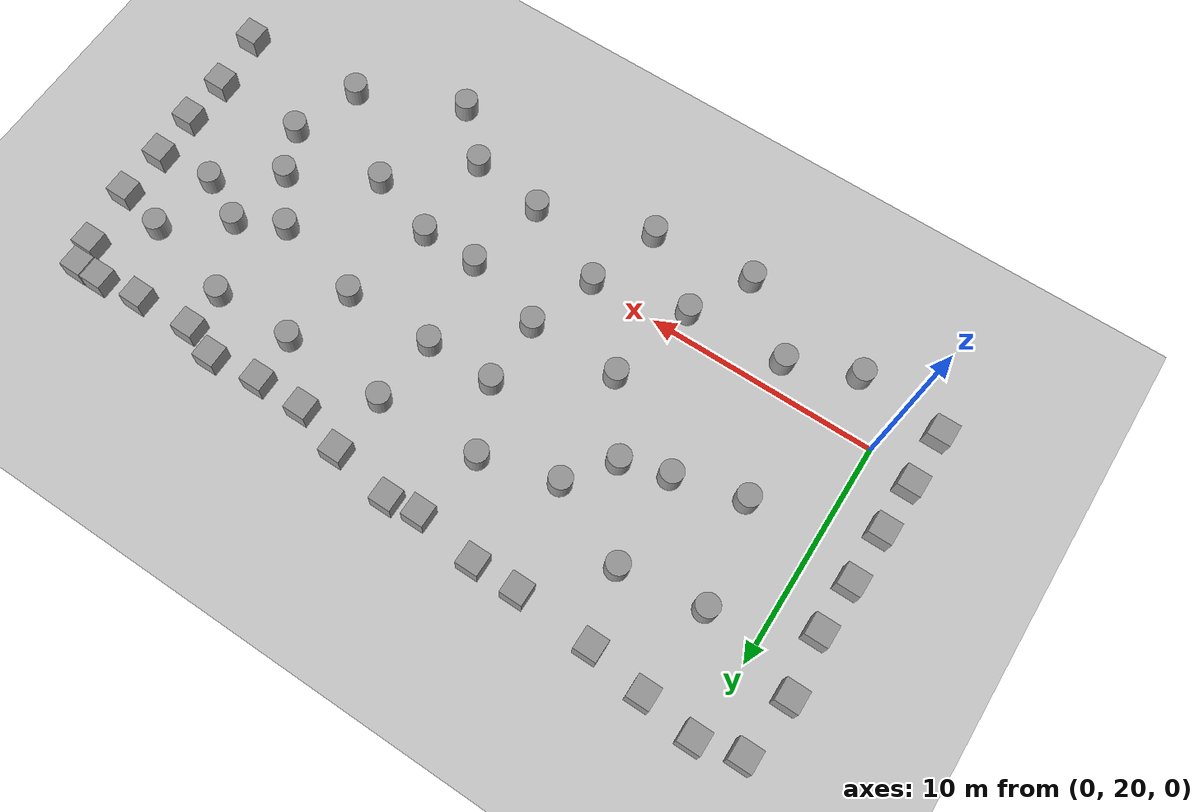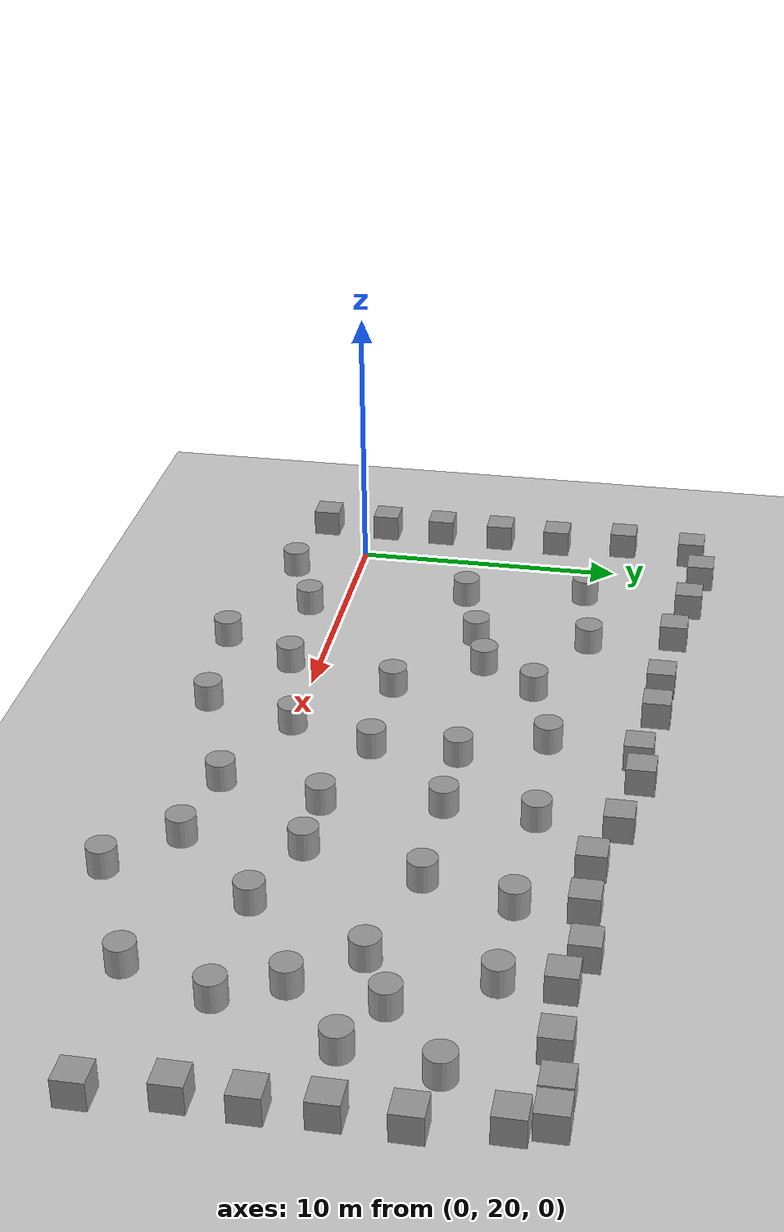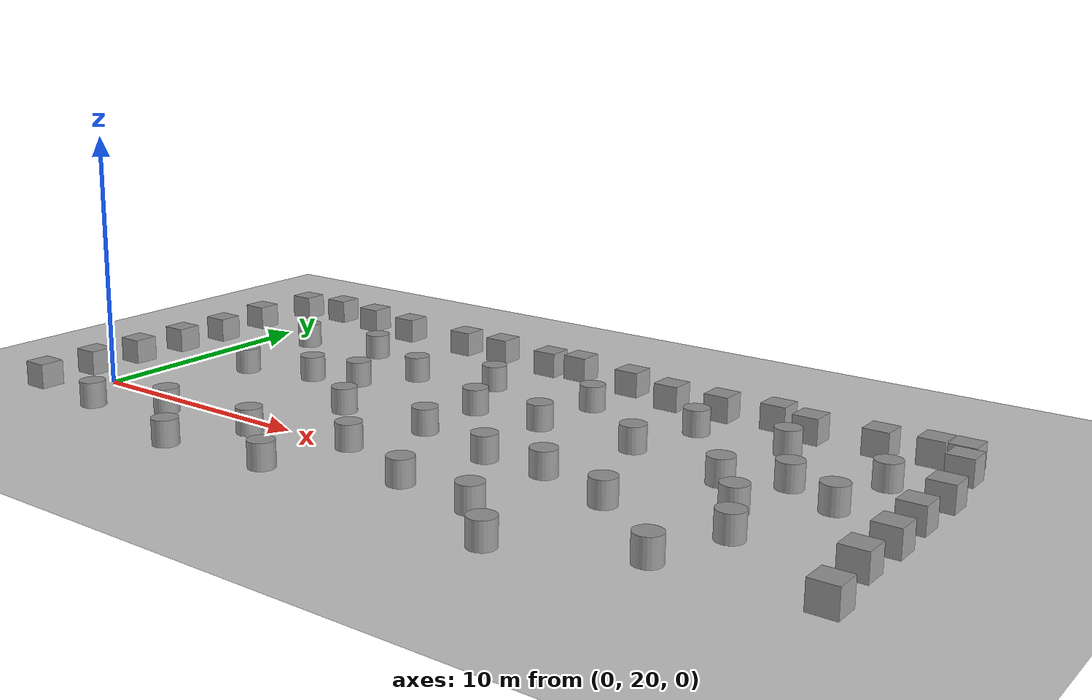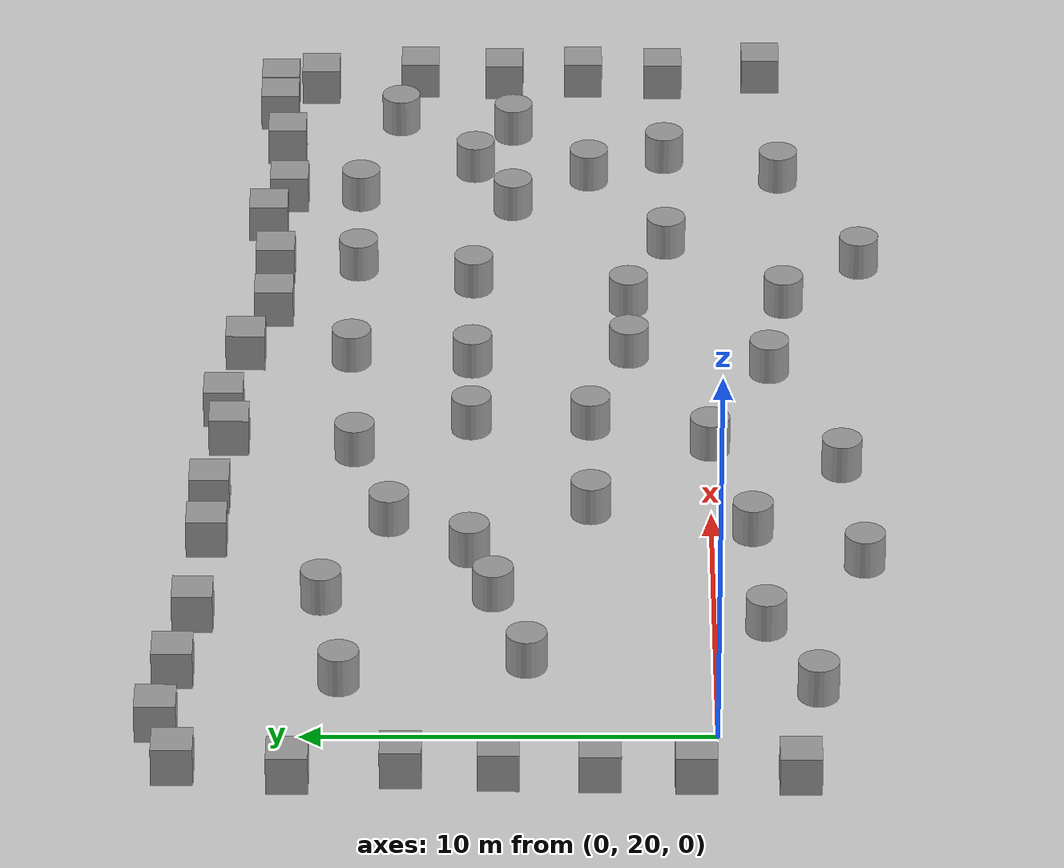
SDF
<sdf version="1.7">
 <world name="default">
  <model name="ground_plane">
   <static>1</static>
   <link name="link">
    <collision name="collision">
     <geometry><plane><normal>0 0 1</normal><size>100 100</size></plane></geometry>
     <surface><friction><ode><mu>100</mu><mu2>50</mu2></ode></friction></surface>
    </collision>
    <visual name="visual">
     <cast_shadows>0</cast_shadows>
     <geometry><plane><normal>0 0 1</normal><size>100 100</size></plane></geometry>
     <material>
      <script><uri>file://media/materials/scripts/gazebo.material</uri><name>Gazebo/Grey</name></script>
     </material>
    </visual>
   </link>
  </model>
  <model name="unit_box_0_clone_13">
   <pose>-1.93409 18.082 0.5 0 -0 0</pose>
   <link name="link">
    <inertial>
     <mass>1</mass>
     <inertia>
      <ixx>0.166667</ixx>
      <ixy>0</ixy>
      <ixz>0</ixz>
      <iyy>0.166667</iyy>
      <iyz>0</iyz>
      <izz>0.166667</izz>
     </inertia>
    </inertial>
    <collision name="collision"><geometry><box><size>1 1 1</size></box></geometry></collision>
    <visual name="visual">
     <geometry><box><size>1 1 1</size></box></geometry>
     <material>
      <script><name>Gazebo/Grey</name><uri>file://media/materials/scripts/gazebo.material</uri></script>
     </material>
    </visual>
   </link>
  </model>
  <model name="unit_box_0_clone_15">
   <pose>-1.90893 20.5485 0.5 0 -0 0</pose>
   <link name="link">
    <inertial>
     <mass>1</mass>
     <inertia>
      <ixx>0.166667</ixx>
      <ixy>0</ixy>
      <ixz>0</ixz>
      <iyy>0.166667</iyy>
      <iyz>0</iyz>
      <izz>0.166667</izz>
     </inertia>
    </inertial>
    <collision name="collision"><geometry><box><size>1 1 1</size></box></geometry></collision>
    <visual name="visual">
     <geometry><box><size>1 1 1</size></box></geometry>
     <material>
      <script><name>Gazebo/Grey</name><uri>file://media/materials/scripts/gazebo.material</uri></script>
     </material>
    </visual>
   </link>
  </model>
  <model name="unit_box_0_clone_17">
   <pose>-1.85948 22.8232 0.5 0 -0 0</pose>
   <link name="link">
    <inertial>
     <mass>1</mass>
     <inertia>
      <ixx>0.166667</ixx>
      <ixy>0</ixy>
      <ixz>0</ixz>
      <iyy>0.166667</iyy>
      <iyz>0</iyz>
      <izz>0.166667</izz>
     </inertia>
    </inertial>
    <collision name="collision"><geometry><box><size>1 1 1</size></box></geometry></collision>
    <visual name="visual">
     <geometry><box><size>1 1 1</size></box></geometry>
     <material>
      <script><name>Gazebo/Grey</name><uri>file://media/materials/scripts/gazebo.material</uri></script>
     </material>
    </visual>
   </link>
  </model>
  <model name="unit_box_0_clone_19">
   <pose>-1.81419 25.2248 0.5 0 -0 0</pose>
   <link name="link">
    <inertial>
     <mass>1</mass>
     <inertia>
      <ixx>0.166667</ixx>
      <ixy>0</ixy>
      <ixz>0</ixz>
      <iyy>0.166667</iyy>
      <iyz>0</iyz>
      <izz>0.166667</izz>
     </inertia>
    </inertial>
    <collision name="collision"><geometry><box><size>1 1 1</size></box></geometry></collision>
    <visual name="visual">
     <geometry><box><size>1 1 1</size></box></geometry>
     <material>
      <script><name>Gazebo/Grey</name><uri>file://media/materials/scripts/gazebo.material</uri></script>
     </material>
    </visual>
   </link>
  </model>
  <model name="unit_box_0_clone_21">
   <pose>-1.71241 27.5404 0.5 0 -0 0</pose>
   <link name="link">
    <inertial>
     <mass>1</mass>
     <inertia>
      <ixx>0.166667</ixx>
      <ixy>0</ixy>
      <ixz>0</ixz>
      <iyy>0.166667</iyy>
      <iyz>0</iyz>
      <izz>0.166667</izz>
     </inertia>
    </inertial>
    <collision name="collision"><geometry><box><size>1 1 1</size></box></geometry></collision>
    <visual name="visual">
     <geometry><box><size>1 1 1</size></box></geometry>
     <material>
      <script><name>Gazebo/Grey</name><uri>file://media/materials/scripts/gazebo.material</uri></script>
     </material>
    </visual>
   </link>
  </model>
  <model name="unit_box">
   <pose>19.5582 31.1273 0.5 -0 -0 -0</pose>
   <link name="link">
    <inertial>
     <mass>1</mass>
     <inertia>
      <ixx>0.166667</ixx>
      <ixy>0</ixy>
      <ixz>0</ixz>
      <iyy>0.166667</iyy>
      <iyz>0</iyz>
      <izz>0.166667</izz>
     </inertia>
    </inertial>
    <collision name="collision"><geometry><box><size>1 1 1</size></box></geometry></collision>
    <visual name="visual">
     <geometry><box><size>1 1 1</size></box></geometry>
     <material>
      <script><name>Gazebo/Grey</name><uri>file://media/materials/scripts/gazebo.material</uri></script>
     </material>
    </visual>
   </link>
  </model>
  <model name="unit_box_1">
   <pose>13.2418 32.0764 0.5 -0 -0 -0</pose>
   <link name="link">
    <inertial>
     <mass>1</mass>
     <inertia>
      <ixx>0.166667</ixx>
      <ixy>0</ixy>
      <ixz>0</ixz>
      <iyy>0.166667</iyy>
      <iyz>0</iyz>
      <izz>0.166667</izz>
     </inertia>
    </inertial>
    <collision name="collision"><geometry><box><size>1 1 1</size></box></geometry></collision>
    <visual name="visual">
     <geometry><box><size>1 1 1</size></box></geometry>
     <material>
      <script><name>Gazebo/Grey</name><uri>file://media/materials/scripts/gazebo.material</uri></script>
     </material>
    </visual>
   </link>
  </model>
  <model name="unit_box_2">
   <pose>8.46351 32.48 0.5 -0 -0 -0</pose>
   <link name="link">
    <inertial>
     <mass>1</mass>
     <inertia>
      <ixx>0.166667</ixx>
      <ixy>0</ixy>
      <ixz>0</ixz>
      <iyy>0.166667</iyy>
      <iyz>0</iyz>
      <izz>0.166667</izz>
     </inertia>
    </inertial>
    <collision name="collision"><geometry><box><size>1 1 1</size></box></geometry></collision>
    <visual name="visual">
     <geometry><box><size>1 1 1</size></box></geometry>
     <material>
      <script><name>Gazebo/Grey</name><uri>file://media/materials/scripts/gazebo.material</uri></script>
     </material>
    </visual>
   </link>
  </model>
  <model name="unit_box_3">
   <pose>10.4591 32.4738 0.5 -0 -0 -0</pose>
   <link name="link">
    <inertial>
     <mass>1</mass>
     <inertia>
      <ixx>0.166667</ixx>
      <ixy>0</ixy>
      <ixz>0</ixz>
      <iyy>0.166667</iyy>
      <iyz>0</iyz>
      <izz>0.166667</izz>
     </inertia>
    </inertial>
    <collision name="collision"><geometry><box><size>1 1 1</size></box></geometry></collision>
    <visual name="visual">
     <geometry><box><size>1 1 1</size></box></geometry>
     <material>
      <script><name>Gazebo/Grey</name><uri>file://media/materials/scripts/gazebo.material</uri></script>
     </material>
    </visual>
   </link>
  </model>
  <model name="unit_box_4">
   <pose>5.07451 32.7008 0.5 -0 -0 -0</pose>
   <link name="link">
    <inertial>
     <mass>1</mass>
     <inertia>
      <ixx>0.166667</ixx>
      <ixy>0</ixy>
      <ixz>0</ixz>
      <iyy>0.166667</iyy>
      <iyz>0</iyz>
      <izz>0.166667</izz>
     </inertia>
    </inertial>
    <collision name="collision"><geometry><box><size>1 1 1</size></box></geometry></collision>
    <visual name="visual">
     <geometry><box><size>1 1 1</size></box></geometry>
     <material>
      <script><name>Gazebo/Grey</name><uri>file://media/materials/scripts/gazebo.material</uri></script>
     </material>
    </visual>
   </link>
  </model>
  <model name="unit_box_5">
   <pose>2.57079 33.0945 0.5 -0 -0 -0</pose>
   <link name="link">
    <inertial>
     <mass>1</mass>
     <inertia>
      <ixx>0.166667</ixx>
      <ixy>0</ixy>
      <ixz>0</ixz>
      <iyy>0.166667</iyy>
      <iyz>0</iyz>
      <izz>0.166667</izz>
     </inertia>
    </inertial>
    <collision name="collision"><geometry><box><size>1 1 1</size></box></geometry></collision>
    <visual name="visual">
     <geometry><box><size>1 1 1</size></box></geometry>
     <material>
      <script><name>Gazebo/Grey</name><uri>file://media/materials/scripts/gazebo.material</uri></script>
     </material>
    </visual>
   </link>
  </model>
  <model name="unit_box_6">
   <pose>0.246513 33.4093 0.5 -0 -0 -0</pose>
   <link name="link">
    <inertial>
     <mass>1</mass>
     <inertia>
      <ixx>0.166667</ixx>
      <ixy>0</ixy>
      <ixz>0</ixz>
      <iyy>0.166667</iyy>
      <iyz>0</iyz>
      <izz>0.166667</izz>
     </inertia>
    </inertial>
    <collision name="collision"><geometry><box><size>1 1 1</size></box></geometry></collision>
    <visual name="visual">
     <geometry><box><size>1 1 1</size></box></geometry>
     <material>
      <script><name>Gazebo/Grey</name><uri>file://media/materials/scripts/gazebo.material</uri></script>
     </material>
    </visual>
   </link>
  </model>
  <model name="unit_box_7">
   <pose>-1.58382 32.9418 0.5 -0 -0 -0</pose>
   <link name="link">
    <inertial>
     <mass>1</mass>
     <inertia>
      <ixx>0.166667</ixx>
      <ixy>0</ixy>
      <ixz>0</ixz>
      <iyy>0.166667</iyy>
      <iyz>0</iyz>
      <izz>0.166667</izz>
     </inertia>
    </inertial>
    <collision name="collision"><geometry><box><size>1 1 1</size></box></geometry></collision>
    <visual name="visual">
     <geometry><box><size>1 1 1</size></box></geometry>
     <material>
      <script><name>Gazebo/Grey</name><uri>file://media/materials/scripts/gazebo.material</uri></script>
     </material>
    </visual>
   </link>
  </model>
  <model name="unit_box_8">
   <pose>-1.95351 30.2154 0.5 -0 -0 -0</pose>
   <link name="link">
    <inertial>
     <mass>1</mass>
     <inertia>
      <ixx>0.166667</ixx>
      <ixy>0</ixy>
      <ixz>0</ixz>
      <iyy>0.166667</iyy>
      <iyz>0</iyz>
      <izz>0.166667</izz>
     </inertia>
    </inertial>
    <collision name="collision"><geometry><box><size>1 1 1</size></box></geometry></collision>
    <visual name="visual">
     <geometry><box><size>1 1 1</size></box></geometry>
     <material>
      <script><name>Gazebo/Grey</name><uri>file://media/materials/scripts/gazebo.material</uri></script>
     </material>
    </visual>
   </link>
  </model>
  <model name="unit_box_9">
   <pose>25.4229 30.8816 0.5 -0 -0 -0</pose>
   <link name="link">
    <inertial>
     <mass>1</mass>
     <inertia>
      <ixx>0.166667</ixx>
      <ixy>0</ixy>
      <ixz>0</ixz>
      <iyy>0.166667</iyy>
      <iyz>0</iyz>
      <izz>0.166667</izz>
     </inertia>
    </inertial>
    <collision name="collision"><geometry><box><size>1 1 1</size></box></geometry></collision>
    <visual name="visual">
     <geometry><box><size>1 1 1</size></box></geometry>
     <material>
      <script><name>Gazebo/Grey</name><uri>file://media/materials/scripts/gazebo.material</uri></script>
     </material>
    </visual>
   </link>
  </model>
  <model name="unit_box_16_clone_2">
   <pose>31.8597 18.3744 0.5 0 -0 0</pose>
   <link name="link">
    <inertial>
     <mass>1</mass>
     <inertia>
      <ixx>0.166667</ixx>
      <ixy>0</ixy>
      <ixz>0</ixz>
      <iyy>0.166667</iyy>
      <iyz>0</iyz>
      <izz>0.166667</izz>
     </inertia>
    </inertial>
    <collision name="collision"><geometry><box><size>1 1 1</size></box></geometry></collision>
    <visual name="visual">
     <geometry><box><size>1 1 1</size></box></geometry>
     <material>
      <script><name>Gazebo/Grey</name><uri>file://media/materials/scripts/gazebo.material</uri></script>
     </material>
    </visual>
   </link>
  </model>
  <model name="unit_box_16_clone_3">
   <pose>31.5558 21 0.5 0 -0 0</pose>
   <link name="link">
    <inertial>
     <mass>1</mass>
     <inertia>
      <ixx>0.166667</ixx>
      <ixy>0</ixy>
      <ixz>0</ixz>
      <iyy>0.166667</iyy>
      <iyz>0</iyz>
      <izz>0.166667</izz>
     </inertia>
    </inertial>
    <collision name="collision"><geometry><box><size>1 1 1</size></box></geometry></collision>
    <visual name="visual">
     <geometry><box><size>1 1 1</size></box></geometry>
     <material>
      <script><name>Gazebo/Grey</name><uri>file://media/materials/scripts/gazebo.material</uri></script>
     </material>
    </visual>
   </link>
  </model>
  <model name="unit_box_16_clone_4">
   <pose>31.6287 23.1382 0.5 -0 -0 -0</pose>
   <link name="link">
    <inertial>
     <mass>1</mass>
     <inertia>
      <ixx>0.166667</ixx>
      <ixy>0</ixy>
      <ixz>0</ixz>
      <iyy>0.166667</iyy>
      <iyz>0</iyz>
      <izz>0.166667</izz>
     </inertia>
    </inertial>
    <collision name="collision"><geometry><box><size>1 1 1</size></box></geometry></collision>
    <visual name="visual">
     <geometry><box><size>1 1 1</size></box></geometry>
     <material>
      <script><name>Gazebo/Grey</name><uri>file://media/materials/scripts/gazebo.material</uri></script>
     </material>
    </visual>
   </link>
  </model>
  <model name="unit_box_16_clone_5">
   <pose>31.5315 25.2557 0.5 0 -0 0</pose>
   <link name="link">
    <inertial>
     <mass>1</mass>
     <inertia>
      <ixx>0.166667</ixx>
      <ixy>0</ixy>
      <ixz>0</ixz>
      <iyy>0.166667</iyy>
      <iyz>0</iyz>
      <izz>0.166667</izz>
     </inertia>
    </inertial>
    <collision name="collision"><geometry><box><size>1 1 1</size></box></geometry></collision>
    <visual name="visual">
     <geometry><box><size>1 1 1</size></box></geometry>
     <material>
      <script><name>Gazebo/Grey</name><uri>file://media/materials/scripts/gazebo.material</uri></script>
     </material>
    </visual>
   </link>
  </model>
  <model name="unit_box_16_clone_6">
   <pose>31.5969 27.5166 0.5 0 -0 0</pose>
   <link name="link">
    <inertial>
     <mass>1</mass>
     <inertia>
      <ixx>0.166667</ixx>
      <ixy>0</ixy>
      <ixz>0</ixz>
      <iyy>0.166667</iyy>
      <iyz>0</iyz>
      <izz>0.166667</izz>
     </inertia>
    </inertial>
    <collision name="collision"><geometry><box><size>1 1 1</size></box></geometry></collision>
    <visual name="visual">
     <geometry><box><size>1 1 1</size></box></geometry>
     <material>
      <script><name>Gazebo/Grey</name><uri>file://media/materials/scripts/gazebo.material</uri></script>
     </material>
    </visual>
   </link>
  </model>
  <model name="unit_box_16_clone_7">
   <pose>31.2341 30.1775 0.5 0 -0 0</pose>
   <link name="link">
    <inertial>
     <mass>1</mass>
     <inertia>
      <ixx>0.166667</ixx>
      <ixy>0</ixy>
      <ixz>0</ixz>
      <iyy>0.166667</iyy>
      <iyz>0</iyz>
      <izz>0.166667</izz>
     </inertia>
    </inertial>
    <collision name="collision"><geometry><box><size>1 1 1</size></box></geometry></collision>
    <visual name="visual">
     <geometry><box><size>1 1 1</size></box></geometry>
     <material>
      <script><name>Gazebo/Grey</name><uri>file://media/materials/scripts/gazebo.material</uri></script>
     </material>
    </visual>
   </link>
  </model>
  <model name="unit_box_16_clone_8">
   <pose>30.922 31.2536 0.5 -0 -0 -0</pose>
   <link name="link">
    <inertial>
     <mass>1</mass>
     <inertia>
      <ixx>0.166667</ixx>
      <ixy>0</ixy>
      <ixz>0</ixz>
      <iyy>0.166667</iyy>
      <iyz>0</iyz>
      <izz>0.166667</izz>
     </inertia>
    </inertial>
    <collision name="collision"><geometry><box><size>1 1 1</size></box></geometry></collision>
    <visual name="visual">
     <geometry><box><size>1 1 1</size></box></geometry>
     <material>
      <script><name>Gazebo/Grey</name><uri>file://media/materials/scripts/gazebo.material</uri></script>
     </material>
    </visual>
   </link>
  </model>
  <model name="unit_box_16_clone_9">
   <pose>29.8641 31.2435 0.5 0 -0 0</pose>
   <link name="link">
    <inertial>
     <mass>1</mass>
     <inertia>
      <ixx>0.166667</ixx>
      <ixy>0</ixy>
      <ixz>0</ixz>
      <iyy>0.166667</iyy>
      <iyz>0</iyz>
      <izz>0.166667</izz>
     </inertia>
    </inertial>
    <collision name="collision"><geometry><box><size>1 1 1</size></box></geometry></collision>
    <visual name="visual">
     <geometry><box><size>1 1 1</size></box></geometry>
     <material>
      <script><name>Gazebo/Grey</name><uri>file://media/materials/scripts/gazebo.material</uri></script>
     </material>
    </visual>
   </link>
  </model>
  <model name="unit_box_16_clone_10">
   <pose>28 31 0.5 -0 -0 -0</pose>
   <link name="link">
    <inertial>
     <mass>1</mass>
     <inertia>
      <ixx>0.166667</ixx>
      <ixy>0</ixy>
      <ixz>0</ixz>
      <iyy>0.166667</iyy>
      <iyz>0</iyz>
      <izz>0.166667</izz>
     </inertia>
    </inertial>
    <collision name="collision"><geometry><box><size>1 1 1</size></box></geometry></collision>
    <visual name="visual">
     <geometry><box><size>1 1 1</size></box></geometry>
     <material>
      <script><name>Gazebo/Grey</name><uri>file://media/materials/scripts/gazebo.material</uri></script>
     </material>
    </visual>
   </link>
  </model>
  <model name="unit_box_16_clone_11">
   <pose>23.9181 31.3844 0.5 -0 -0 -0</pose>
   <link name="link">
    <inertial>
     <mass>1</mass>
     <inertia>
      <ixx>0.166667</ixx>
      <ixy>0</ixy>
      <ixz>0</ixz>
      <iyy>0.166667</iyy>
      <iyz>0</iyz>
      <izz>0.166667</izz>
     </inertia>
    </inertial>
    <collision name="collision"><geometry><box><size>1 1 1</size></box></geometry></collision>
    <visual name="visual">
     <geometry><box><size>1 1 1</size></box></geometry>
     <material>
      <script><name>Gazebo/Grey</name><uri>file://media/materials/scripts/gazebo.material</uri></script>
     </material>
    </visual>
   </link>
  </model>
  <model name="unit_box_16_clone_12">
   <pose>21.7173 31.1442 0.5 -0 -0 -0</pose>
   <link name="link">
    <inertial>
     <mass>1</mass>
     <inertia>
      <ixx>0.166667</ixx>
      <ixy>0</ixy>
      <ixz>0</ixz>
      <iyy>0.166667</iyy>
      <iyz>0</iyz>
      <izz>0.166667</izz>
     </inertia>
    </inertial>
    <collision name="collision"><geometry><box><size>1 1 1</size></box></geometry></collision>
    <visual name="visual">
     <geometry><box><size>1 1 1</size></box></geometry>
     <material>
      <script><name>Gazebo/Grey</name><uri>file://media/materials/scripts/gazebo.material</uri></script>
     </material>
    </visual>
   </link>
  </model>
  <model name="unit_box_16_clone_13">
   <pose>17.3804 31.7887 0.5 -0 -0 -0</pose>
   <link name="link">
    <inertial>
     <mass>1</mass>
     <inertia>
      <ixx>0.166667</ixx>
      <ixy>0</ixy>
      <ixz>0</ixz>
      <iyy>0.166667</iyy>
      <iyz>0</iyz>
      <izz>0.166667</izz>
     </inertia>
    </inertial>
    <collision name="collision"><geometry><box><size>1 1 1</size></box></geometry></collision>
    <visual name="visual">
     <geometry><box><size>1 1 1</size></box></geometry>
     <material>
      <script><name>Gazebo/Grey</name><uri>file://media/materials/scripts/gazebo.material</uri></script>
     </material>
    </visual>
   </link>
  </model>
  <model name="unit_box_16_clone_14">
   <pose>14.6222 32.2609 0.5 0 -0 0</pose>
   <link name="link">
    <inertial>
     <mass>1</mass>
     <inertia>
      <ixx>0.166667</ixx>
      <ixy>0</ixy>
      <ixz>0</ixz>
      <iyy>0.166667</iyy>
      <iyz>0</iyz>
      <izz>0.166667</izz>
     </inertia>
    </inertial>
    <collision name="collision"><geometry><box><size>1 1 1</size></box></geometry></collision>
    <visual name="visual">
     <geometry><box><size>1 1 1</size></box></geometry>
     <material>
      <script><name>Gazebo/Grey</name><uri>file://media/materials/scripts/gazebo.material</uri></script>
     </material>
    </visual>
   </link>
  </model>
  <model name="unit_cylinder_clone_15">
   <pose>26.4625 18 0.499998 3e-06 -4e-06 0</pose>
   <link name="link">
    <inertial>
     <mass>1</mass>
     <inertia><ixx>0.145833</ixx><ixy>0</ixy><ixz>0</ixz><iyy>0.145833</iyy><iyz>0</iyz><izz>0.125</izz></inertia>
    </inertial>
    <collision name="collision">
     <geometry><cylinder><radius>0.5</radius><length>1</length></cylinder></geometry>
    </collision>
    <visual name="visual">
     <geometry><cylinder><radius>0.5</radius><length>1</length></cylinder></geometry>
     <material>
      <script><name>Gazebo/Grey</name><uri>file://media/materials/scripts/gazebo.material</uri></script>
     </material>
    </visual>
   </link>
  </model>
  <model name="unit_cylinder_clone_24">
   <pose>27.4927 21 0.499992 -3e-06 4e-06 0</pose>
   <link name="link">
    <inertial>
     <mass>1</mass>
     <inertia><ixx>0.145833</ixx><ixy>0</ixy><ixz>0</ixz><iyy>0.145833</iyy><iyz>0</iyz><izz>0.125</izz></inertia>
    </inertial>
    <collision name="collision">
     <geometry><cylinder><radius>0.5</radius><length>1</length></cylinder></geometry>
    </collision>
    <visual name="visual">
     <geometry><cylinder><radius>0.5</radius><length>1</length></cylinder></geometry>
     <material>
      <script><name>Gazebo/Grey</name><uri>file://media/materials/scripts/gazebo.material</uri></script>
     </material>
    </visual>
   </link>
  </model>
  <model name="unit_cylinder_clone_25">
   <pose>29 25 0.499998 3e-06 -4e-06 0</pose>
   <link name="link">
    <inertial>
     <mass>1</mass>
     <inertia><ixx>0.145833</ixx><ixy>0</ixy><ixz>0</ixz><iyy>0.145833</iyy><iyz>0</iyz><izz>0.125</izz></inertia>
    </inertial>
    <collision name="collision">
     <geometry><cylinder><radius>0.5</radius><length>1</length></cylinder></geometry>
    </collision>
    <visual name="visual">
     <geometry><cylinder><radius>0.5</radius><length>1</length></cylinder></geometry>
     <material>
      <script><name>Gazebo/Grey</name><uri>file://media/materials/scripts/gazebo.material</uri></script>
     </material>
    </visual>
   </link>
  </model>
  <model name="unit_cylinder_clone_26">
   <pose>29.5016 28 0.499992 -3e-06 4e-06 0</pose>
   <link name="link">
    <inertial>
     <mass>1</mass>
     <inertia><ixx>0.145833</ixx><ixy>0</ixy><ixz>0</ixz><iyy>0.145833</iyy><iyz>0</iyz><izz>0.125</izz></inertia>
    </inertial>
    <collision name="collision">
     <geometry><cylinder><radius>0.5</radius><length>1</length></cylinder></geometry>
    </collision>
    <visual name="visual">
     <geometry><cylinder><radius>0.5</radius><length>1</length></cylinder></geometry>
     <material>
      <script><name>Gazebo/Grey</name><uri>file://media/materials/scripts/gazebo.material</uri></script>
     </material>
    </visual>
   </link>
  </model>
  <model name="unit_cylinder_clone_27">
   <pose>25.4619 29 0.499998 3e-06 -4e-06 0</pose>
   <link name="link">
    <inertial>
     <mass>1</mass>
     <inertia><ixx>0.145833</ixx><ixy>0</ixy><ixz>0</ixz><iyy>0.145833</iyy><iyz>0</iyz><izz>0.125</izz></inertia>
    </inertial>
    <collision name="collision">
     <geometry><cylinder><radius>0.5</radius><length>1</length></cylinder></geometry>
    </collision>
    <visual name="visual">
     <geometry><cylinder><radius>0.5</radius><length>1</length></cylinder></geometry>
     <material>
      <script><name>Gazebo/Grey</name><uri>file://media/materials/scripts/gazebo.material</uri></script>
     </material>
    </visual>
   </link>
  </model>
  <model name="unit_cylinder_clone_28">
   <pose>25 25 0.499992 -3e-06 4e-06 0</pose>
   <link name="link">
    <inertial>
     <mass>1</mass>
     <inertia><ixx>0.145833</ixx><ixy>0</ixy><ixz>0</ixz><iyy>0.145833</iyy><iyz>0</iyz><izz>0.125</izz></inertia>
    </inertial>
    <collision name="collision">
     <geometry><cylinder><radius>0.5</radius><length>1</length></cylinder></geometry>
    </collision>
    <visual name="visual">
     <geometry><cylinder><radius>0.5</radius><length>1</length></cylinder></geometry>
     <material>
      <script><name>Gazebo/Grey</name><uri>file://media/materials/scripts/gazebo.material</uri></script>
     </material>
    </visual>
   </link>
  </model>
  <model name="unit_cylinder_clone_29">
   <pose>26.5562 23 0.499998 4e-06 -4e-06 0</pose>
   <link name="link">
    <inertial>
     <mass>1</mass>
     <inertia><ixx>0.145833</ixx><ixy>0</ixy><ixz>0</ixz><iyy>0.145833</iyy><iyz>0</iyz><izz>0.125</izz></inertia>
    </inertial>
    <collision name="collision">
     <geometry><cylinder><radius>0.5</radius><length>1</length></cylinder></geometry>
    </collision>
    <visual name="visual">
     <geometry><cylinder><radius>0.5</radius><length>1</length></cylinder></geometry>
     <material>
      <script><name>Gazebo/Grey</name><uri>file://media/materials/scripts/gazebo.material</uri></script>
     </material>
    </visual>
   </link>
  </model>
  <model name="unit_cylinder_clone_30">
   <pose>27 26 0.499998 4e-06 -4e-06 0</pose>
   <link name="link">
    <inertial>
     <mass>1</mass>
     <inertia><ixx>0.145833</ixx><ixy>0</ixy><ixz>0</ixz><iyy>0.145833</iyy><iyz>0</iyz><izz>0.125</izz></inertia>
    </inertial>
    <collision name="collision">
     <geometry><cylinder><radius>0.5</radius><length>1</length></cylinder></geometry>
    </collision>
    <visual name="visual">
     <geometry><cylinder><radius>0.5</radius><length>1</length></cylinder></geometry>
     <material>
      <script><name>Gazebo/Grey</name><uri>file://media/materials/scripts/gazebo.material</uri></script>
     </material>
    </visual>
   </link>
  </model>
  <model name="unit_cylinder_clone_31">
   <pose>23 21 0.499992 -3e-06 -4e-06 -0</pose>
   <link name="link">
    <inertial>
     <mass>1</mass>
     <inertia><ixx>0.145833</ixx><ixy>0</ixy><ixz>0</ixz><iyy>0.145833</iyy><iyz>0</iyz><izz>0.125</izz></inertia>
    </inertial>
    <collision name="collision">
     <geometry><cylinder><radius>0.5</radius><length>1</length></cylinder></geometry>
    </collision>
    <visual name="visual">
     <geometry><cylinder><radius>0.5</radius><length>1</length></cylinder></geometry>
     <material>
      <script><name>Gazebo/Grey</name><uri>file://media/materials/scripts/gazebo.material</uri></script>
     </material>
    </visual>
   </link>
  </model>
  <model name="unit_cylinder_clone_32">
   <pose>21 26 0.499998 3e-06 4e-06 -0</pose>
   <link name="link">
    <inertial>
     <mass>1</mass>
     <inertia><ixx>0.145833</ixx><ixy>0</ixy><ixz>0</ixz><iyy>0.145833</iyy><iyz>0</iyz><izz>0.125</izz></inertia>
    </inertial>
    <collision name="collision">
     <geometry><cylinder><radius>0.5</radius><length>1</length></cylinder></geometry>
    </collision>
    <visual name="visual">
     <geometry><cylinder><radius>0.5</radius><length>1</length></cylinder></geometry>
     <material>
      <script><name>Gazebo/Grey</name><uri>file://media/materials/scripts/gazebo.material</uri></script>
     </material>
    </visual>
   </link>
  </model>
  <model name="unit_cylinder_clone_33">
   <pose>17 26 0.499992 -3e-06 -4e-06 -0</pose>
   <link name="link">
    <inertial>
     <mass>1</mass>
     <inertia><ixx>0.145833</ixx><ixy>0</ixy><ixz>0</ixz><iyy>0.145833</iyy><iyz>0</iyz><izz>0.125</izz></inertia>
    </inertial>
    <collision name="collision">
     <geometry><cylinder><radius>0.5</radius><length>1</length></cylinder></geometry>
    </collision>
    <visual name="visual">
     <geometry><cylinder><radius>0.5</radius><length>1</length></cylinder></geometry>
     <material>
      <script><name>Gazebo/Grey</name><uri>file://media/materials/scripts/gazebo.material</uri></script>
     </material>
    </visual>
   </link>
  </model>
  <model name="unit_cylinder_clone_34">
   <pose>17.5007 22 0.499998 3e-06 4e-06 -0</pose>
   <link name="link">
    <inertial>
     <mass>1</mass>
     <inertia><ixx>0.145833</ixx><ixy>0</ixy><ixz>0</ixz><iyy>0.145833</iyy><iyz>0</iyz><izz>0.125</izz></inertia>
    </inertial>
    <collision name="collision">
     <geometry><cylinder><radius>0.5</radius><length>1</length></cylinder></geometry>
    </collision>
    <visual name="visual">
     <geometry><cylinder><radius>0.5</radius><length>1</length></cylinder></geometry>
     <material>
      <script><name>Gazebo/Grey</name><uri>file://media/materials/scripts/gazebo.material</uri></script>
     </material>
    </visual>
   </link>
  </model>
  <model name="unit_cylinder_clone_35">
   <pose>20 22 0.499992 -3e-06 -4e-06 -0</pose>
   <link name="link">
    <inertial>
     <mass>1</mass>
     <inertia><ixx>0.145833</ixx><ixy>0</ixy><ixz>0</ixz><iyy>0.145833</iyy><iyz>0</iyz><izz>0.125</izz></inertia>
    </inertial>
    <collision name="collision">
     <geometry><cylinder><radius>0.5</radius><length>1</length></cylinder></geometry>
    </collision>
    <visual name="visual">
     <geometry><cylinder><radius>0.5</radius><length>1</length></cylinder></geometry>
     <material>
      <script><name>Gazebo/Grey</name><uri>file://media/materials/scripts/gazebo.material</uri></script>
     </material>
    </visual>
   </link>
  </model>
  <model name="unit_cylinder_clone_36">
   <pose>20 18 0.499992 -3e-06 -4e-06 -0</pose>
   <link name="link">
    <inertial>
     <mass>1</mass>
     <inertia><ixx>0.145833</ixx><ixy>0</ixy><ixz>0</ixz><iyy>0.145833</iyy><iyz>0</iyz><izz>0.125</izz></inertia>
    </inertial>
    <collision name="collision">
     <geometry><cylinder><radius>0.5</radius><length>1</length></cylinder></geometry>
    </collision>
    <visual name="visual">
     <geometry><cylinder><radius>0.5</radius><length>1</length></cylinder></geometry>
     <material>
      <script><name>Gazebo/Grey</name><uri>file://media/materials/scripts/gazebo.material</uri></script>
     </material>
    </visual>
   </link>
  </model>
  <model name="unit_cylinder_clone_37">
   <pose>22 16 0.499992 -3e-06 -4e-06 -0</pose>
   <link name="link">
    <inertial>
     <mass>1</mass>
     <inertia><ixx>0.145833</ixx><ixy>0</ixy><ixz>0</ixz><iyy>0.145833</iyy><iyz>0</iyz><izz>0.125</izz></inertia>
    </inertial>
    <collision name="collision">
     <geometry><cylinder><radius>0.5</radius><length>1</length></cylinder></geometry>
    </collision>
    <visual name="visual">
     <geometry><cylinder><radius>0.5</radius><length>1</length></cylinder></geometry>
     <material>
      <script><name>Gazebo/Grey</name><uri>file://media/materials/scripts/gazebo.material</uri></script>
     </material>
    </visual>
   </link>
  </model>
  <model name="unit_cylinder_clone_38">
   <pose>16.7538 18.4349 0.499998 3e-06 4e-06 -0</pose>
   <link name="link">
    <inertial>
     <mass>1</mass>
     <inertia><ixx>0.145833</ixx><ixy>0</ixy><ixz>0</ixz><iyy>0.145833</iyy><iyz>0</iyz><izz>0.125</izz></inertia>
    </inertial>
    <collision name="collision">
     <geometry><cylinder><radius>0.5</radius><length>1</length></cylinder></geometry>
    </collision>
    <visual name="visual">
     <geometry><cylinder><radius>0.5</radius><length>1</length></cylinder></geometry>
     <material>
      <script><name>Gazebo/Grey</name><uri>file://media/materials/scripts/gazebo.material</uri></script>
     </material>
    </visual>
   </link>
  </model>
  <model name="unit_cylinder_clone_39">
   <pose>13 20 0.499998 3e-06 4e-06 -0</pose>
   <link name="link">
    <inertial>
     <mass>1</mass>
     <inertia><ixx>0.145833</ixx><ixy>0</ixy><ixz>0</ixz><iyy>0.145833</iyy><iyz>0</iyz><izz>0.125</izz></inertia>
    </inertial>
    <collision name="collision">
     <geometry><cylinder><radius>0.5</radius><length>1</length></cylinder></geometry>
    </collision>
    <visual name="visual">
     <geometry><cylinder><radius>0.5</radius><length>1</length></cylinder></geometry>
     <material>
      <script><name>Gazebo/Grey</name><uri>file://media/materials/scripts/gazebo.material</uri></script>
     </material>
    </visual>
   </link>
  </model>
  <model name="unit_cylinder_clone_40">
   <pose>11.9934 16.7199 0.499997 3e-06 3e-06 0</pose>
   <link name="link">
    <inertial>
     <mass>1</mass>
     <inertia><ixx>0.145833</ixx><ixy>0</ixy><ixz>0</ixz><iyy>0.145833</iyy><iyz>0</iyz><izz>0.125</izz></inertia>
    </inertial>
    <collision name="collision">
     <geometry><cylinder><radius>0.5</radius><length>1</length></cylinder></geometry>
    </collision>
    <visual name="visual">
     <geometry><cylinder><radius>0.5</radius><length>1</length></cylinder></geometry>
     <material>
      <script><name>Gazebo/Grey</name><uri>file://media/materials/scripts/gazebo.material</uri></script>
     </material>
    </visual>
   </link>
  </model>
  <model name="unit_cylinder_clone_41">
   <pose>7.56689 16.277 0.499993 -3e-06 -3e-06 0</pose>
   <link name="link">
    <inertial>
     <mass>1</mass>
     <inertia><ixx>0.145833</ixx><ixy>0</ixy><ixz>0</ixz><iyy>0.145833</iyy><iyz>0</iyz><izz>0.125</izz></inertia>
    </inertial>
    <collision name="collision">
     <geometry><cylinder><radius>0.5</radius><length>1</length></cylinder></geometry>
    </collision>
    <visual name="visual">
     <geometry><cylinder><radius>0.5</radius><length>1</length></cylinder></geometry>
     <material>
      <script><name>Gazebo/Grey</name><uri>file://media/materials/scripts/gazebo.material</uri></script>
     </material>
    </visual>
   </link>
  </model>
  <model name="unit_cylinder_clone_45">
   <pose>1.81917 17.5637 0.499992 -3e-06 4e-06 0</pose>
   <link name="link">
    <inertial>
     <mass>1</mass>
     <inertia><ixx>0.145833</ixx><ixy>0</ixy><ixz>0</ixz><iyy>0.145833</iyy><iyz>0</iyz><izz>0.125</izz></inertia>
    </inertial>
    <collision name="collision">
     <geometry><cylinder><radius>0.5</radius><length>1</length></cylinder></geometry>
    </collision>
    <visual name="visual">
     <geometry><cylinder><radius>0.5</radius><length>1</length></cylinder></geometry>
     <material>
      <script><name>Gazebo/Grey</name><uri>file://media/materials/scripts/gazebo.material</uri></script>
     </material>
    </visual>
   </link>
  </model>
  <model name="unit_cylinder_clone_46">
   <pose>4.71369 18.7578 0.499993 -3e-06 -4e-06 -0</pose>
   <link name="link">
    <inertial>
     <mass>1</mass>
     <inertia><ixx>0.145833</ixx><ixy>0</ixy><ixz>0</ixz><iyy>0.145833</iyy><iyz>0</iyz><izz>0.125</izz></inertia>
    </inertial>
    <collision name="collision">
     <geometry><cylinder><radius>0.5</radius><length>1</length></cylinder></geometry>
    </collision>
    <visual name="visual">
     <geometry><cylinder><radius>0.5</radius><length>1</length></cylinder></geometry>
     <material>
      <script><name>Gazebo/Grey</name><uri>file://media/materials/scripts/gazebo.material</uri></script>
     </material>
    </visual>
   </link>
  </model>
  <model name="unit_cylinder_clone_47">
   <pose>3.05567 24.5767 0.499993 -3e-06 -4e-06 -0</pose>
   <link name="link">
    <inertial>
     <mass>1</mass>
     <inertia><ixx>0.145833</ixx><ixy>0</ixy><ixz>0</ixz><iyy>0.145833</iyy><iyz>0</iyz><izz>0.125</izz></inertia>
    </inertial>
    <collision name="collision">
     <geometry><cylinder><radius>0.5</radius><length>1</length></cylinder></geometry>
    </collision>
    <visual name="visual">
     <geometry><cylinder><radius>0.5</radius><length>1</length></cylinder></geometry>
     <material>
      <script><name>Gazebo/Grey</name><uri>file://media/materials/scripts/gazebo.material</uri></script>
     </material>
    </visual>
   </link>
  </model>
  <model name="unit_cylinder_clone_48">
   <pose>2.2386 29.0919 0.499993 -3e-06 -4e-06 -0</pose>
   <link name="link">
    <inertial>
     <mass>1</mass>
     <inertia><ixx>0.145833</ixx><ixy>0</ixy><ixz>0</ixz><iyy>0.145833</iyy><iyz>0</iyz><izz>0.125</izz></inertia>
    </inertial>
    <collision name="collision">
     <geometry><cylinder><radius>0.5</radius><length>1</length></cylinder></geometry>
    </collision>
    <visual name="visual">
     <geometry><cylinder><radius>0.5</radius><length>1</length></cylinder></geometry>
     <material>
      <script><name>Gazebo/Grey</name><uri>file://media/materials/scripts/gazebo.material</uri></script>
     </material>
    </visual>
   </link>
  </model>
  <model name="unit_cylinder_clone_49">
   <pose>5.83552 29.5997 0.499997 3e-06 4e-06 -0</pose>
   <link name="link">
    <inertial>
     <mass>1</mass>
     <inertia><ixx>0.145833</ixx><ixy>0</ixy><ixz>0</ixz><iyy>0.145833</iyy><iyz>0</iyz><izz>0.125</izz></inertia>
    </inertial>
    <collision name="collision">
     <geometry><cylinder><radius>0.5</radius><length>1</length></cylinder></geometry>
    </collision>
    <visual name="visual">
     <geometry><cylinder><radius>0.5</radius><length>1</length></cylinder></geometry>
     <material>
      <script><name>Gazebo/Grey</name><uri>file://media/materials/scripts/gazebo.material</uri></script>
     </material>
    </visual>
   </link>
  </model>
  <model name="unit_cylinder_clone_50">
   <pose>9.42417 28 0.499992 -3e-06 4e-06 0</pose>
   <link name="link">
    <inertial>
     <mass>1</mass>
     <inertia><ixx>0.145833</ixx><ixy>0</ixy><ixz>0</ixz><iyy>0.145833</iyy><iyz>0</iyz><izz>0.125</izz></inertia>
    </inertial>
    <collision name="collision">
     <geometry><cylinder><radius>0.5</radius><length>1</length></cylinder></geometry>
    </collision>
    <visual name="visual">
     <geometry><cylinder><radius>0.5</radius><length>1</length></cylinder></geometry>
     <material>
      <script><name>Gazebo/Grey</name><uri>file://media/materials/scripts/gazebo.material</uri></script>
     </material>
    </visual>
   </link>
  </model>
  <model name="unit_cylinder_clone_51">
   <pose>12.7083 28.9175 0.499997 3e-06 4e-06 -0</pose>
   <link name="link">
    <inertial>
     <mass>1</mass>
     <inertia><ixx>0.145833</ixx><ixy>0</ixy><ixz>0</ixz><iyy>0.145833</iyy><iyz>0</iyz><izz>0.125</izz></inertia>
    </inertial>
    <collision name="collision">
     <geometry><cylinder><radius>0.5</radius><length>1</length></cylinder></geometry>
    </collision>
    <visual name="visual">
     <geometry><cylinder><radius>0.5</radius><length>1</length></cylinder></geometry>
     <material>
      <script><name>Gazebo/Grey</name><uri>file://media/materials/scripts/gazebo.material</uri></script>
     </material>
    </visual>
   </link>
  </model>
  <model name="unit_cylinder_clone_52">
   <pose>14 26 0.499997 3e-06 4e-06 -0</pose>
   <link name="link">
    <inertial>
     <mass>1</mass>
     <inertia><ixx>0.145833</ixx><ixy>0</ixy><ixz>0</ixz><iyy>0.145833</iyy><iyz>0</iyz><izz>0.125</izz></inertia>
    </inertial>
    <collision name="collision">
     <geometry><cylinder><radius>0.5</radius><length>1</length></cylinder></geometry>
    </collision>
    <visual name="visual">
     <geometry><cylinder><radius>0.5</radius><length>1</length></cylinder></geometry>
     <material>
      <script><name>Gazebo/Grey</name><uri>file://media/materials/scripts/gazebo.material</uri></script>
     </material>
    </visual>
   </link>
  </model>
  <model name="unit_cylinder_clone_53">
   <pose>14 23 0.499993 -3e-06 -4e-06 -0</pose>
   <link name="link">
    <inertial>
     <mass>1</mass>
     <inertia><ixx>0.145833</ixx><ixy>0</ixy><ixz>0</ixz><iyy>0.145833</iyy><iyz>0</iyz><izz>0.125</izz></inertia>
    </inertial>
    <collision name="collision">
     <geometry><cylinder><radius>0.5</radius><length>1</length></cylinder></geometry>
    </collision>
    <visual name="visual">
     <geometry><cylinder><radius>0.5</radius><length>1</length></cylinder></geometry>
     <material>
      <script><name>Gazebo/Grey</name><uri>file://media/materials/scripts/gazebo.material</uri></script>
     </material>
    </visual>
   </link>
  </model>
  <model name="unit_cylinder_clone_54">
   <pose>10 23 0.499993 -3e-06 -4e-06 -0</pose>
   <link name="link">
    <inertial>
     <mass>1</mass>
     <inertia><ixx>0.145833</ixx><ixy>0</ixy><ixz>0</ixz><iyy>0.145833</iyy><iyz>0</iyz><izz>0.125</izz></inertia>
    </inertial>
    <collision name="collision">
     <geometry><cylinder><radius>0.5</radius><length>1</length></cylinder></geometry>
    </collision>
    <visual name="visual">
     <geometry><cylinder><radius>0.5</radius><length>1</length></cylinder></geometry>
     <material>
      <script><name>Gazebo/Grey</name><uri>file://media/materials/scripts/gazebo.material</uri></script>
     </material>
    </visual>
   </link>
  </model>
  <model name="unit_cylinder_clone_55">
   <pose>8 26 0.499997 3e-06 4e-06 -0</pose>
   <link name="link">
    <inertial>
     <mass>1</mass>
     <inertia><ixx>0.145833</ixx><ixy>0</ixy><ixz>0</ixz><iyy>0.145833</iyy><iyz>0</iyz><izz>0.125</izz></inertia>
    </inertial>
    <collision name="collision">
     <geometry><cylinder><radius>0.5</radius><length>1</length></cylinder></geometry>
    </collision>
    <visual name="visual">
     <geometry><cylinder><radius>0.5</radius><length>1</length></cylinder></geometry>
     <material>
      <script><name>Gazebo/Grey</name><uri>file://media/materials/scripts/gazebo.material</uri></script>
     </material>
    </visual>
   </link>
  </model>
  <model name="unit_cylinder_clone_56">
   <pose>6 25.4037 0.499997 3e-06 4e-06 -0</pose>
   <link name="link">
    <inertial>
     <mass>1</mass>
     <inertia><ixx>0.145833</ixx><ixy>0</ixy><ixz>0</ixz><iyy>0.145833</iyy><iyz>0</iyz><izz>0.125</izz></inertia>
    </inertial>
    <collision name="collision">
     <geometry><cylinder><radius>0.5</radius><length>1</length></cylinder></geometry>
    </collision>
    <visual name="visual">
     <geometry><cylinder><radius>0.5</radius><length>1</length></cylinder></geometry>
     <material>
      <script><name>Gazebo/Grey</name><uri>file://media/materials/scripts/gazebo.material</uri></script>
     </material>
    </visual>
   </link>
  </model>
  <model name="unit_cylinder_clone_57">
   <pose>9 19 0.499997 3e-06 4e-06 -0</pose>
   <link name="link">
    <inertial>
     <mass>1</mass>
     <inertia><ixx>0.145833</ixx><ixy>0</ixy><ixz>0</ixz><iyy>0.145833</iyy><iyz>0</iyz><izz>0.125</izz></inertia>
    </inertial>
    <collision name="collision">
     <geometry><cylinder><radius>0.5</radius><length>1</length></cylinder></geometry>
    </collision>
    <visual name="visual">
     <geometry><cylinder><radius>0.5</radius><length>1</length></cylinder></geometry>
     <material>
      <script><name>Gazebo/Grey</name><uri>file://media/materials/scripts/gazebo.material</uri></script>
     </material>
    </visual>
   </link>
  </model>
  <model name="unit_cylinder_clone_58">
   <pose>17.2736 29.0873 0.499993 -3e-06 -4e-06 -0</pose>
   <link name="link">
    <inertial>
     <mass>1</mass>
     <inertia><ixx>0.145833</ixx><ixy>0</ixy><ixz>0</ixz><iyy>0.145833</iyy><iyz>0</iyz><izz>0.125</izz></inertia>
    </inertial>
    <collision name="collision">
     <geometry><cylinder><radius>0.5</radius><length>1</length></cylinder></geometry>
    </collision>
    <visual name="visual">
     <geometry><cylinder><radius>0.5</radius><length>1</length></cylinder></geometry>
     <material>
      <script><name>Gazebo/Grey</name><uri>file://media/materials/scripts/gazebo.material</uri></script>
     </material>
    </visual>
   </link>
  </model>
  <model name="unit_cylinder_clone_59">
   <pose>21.8528 28.992 0.499997 3e-06 4e-06 -0</pose>
   <link name="link">
    <inertial>
     <mass>1</mass>
     <inertia><ixx>0.145833</ixx><ixy>0</ixy><ixz>0</ixz><iyy>0.145833</iyy><iyz>0</iyz><izz>0.125</izz></inertia>
    </inertial>
    <collision name="collision">
     <geometry><cylinder><radius>0.5</radius><length>1</length></cylinder></geometry>
    </collision>
    <visual name="visual">
     <geometry><cylinder><radius>0.5</radius><length>1</length></cylinder></geometry>
     <material>
      <script><name>Gazebo/Grey</name><uri>file://media/materials/scripts/gazebo.material</uri></script>
     </material>
    </visual>
   </link>
  </model>
 </world>
</sdf>
